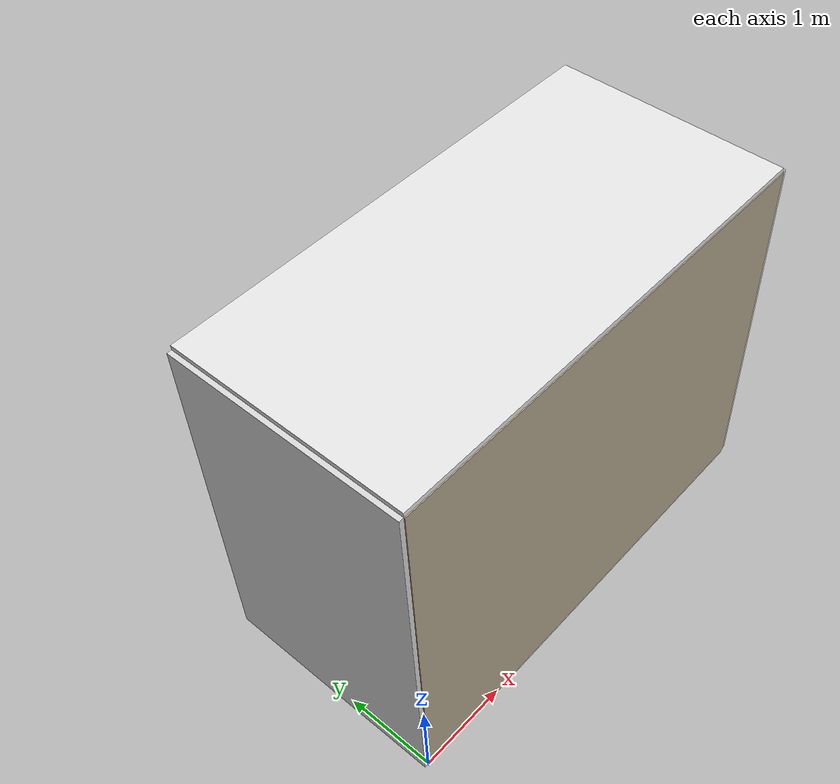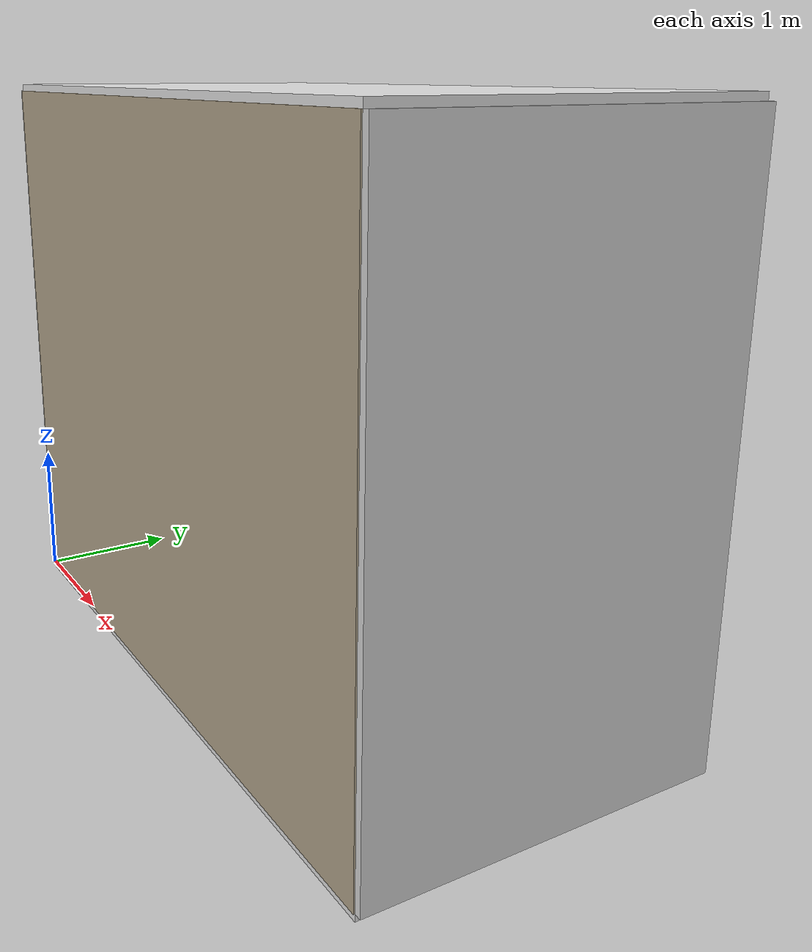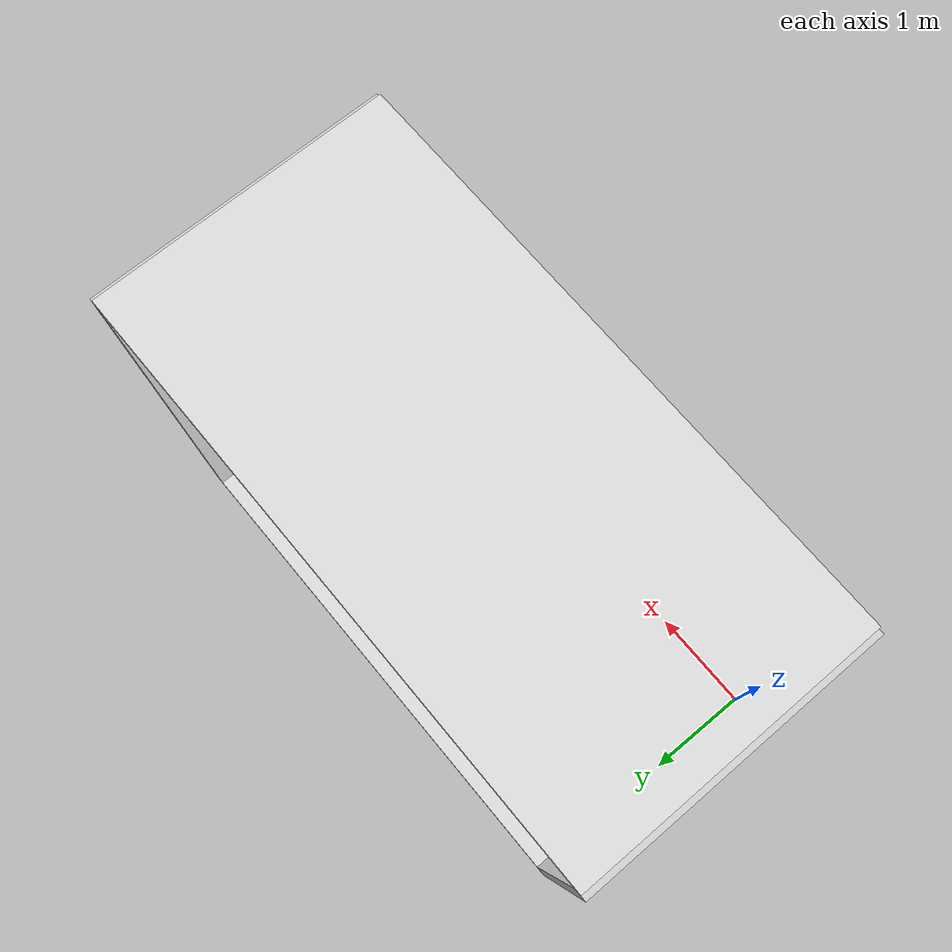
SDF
<?xml version="1.0" ?>
<sdf version="1.6">
  <world name="hackathon_room">

    <plugin name="gazebo_ros_state" filename="libgazebo_ros_state.so">
      <ros><namespace>/phantom_echo</namespace></ros>
    </plugin>

    <light name="overhead_light" type="directional">
      <pose>2.5 2.0 2.4 0 0 0</pose>
      <diffuse>1 1 1 1</diffuse>
      <specular>0.2 0.2 0.2 1</specular>
      <direction>0 0 -1</direction>
      <cast_shadows>true</cast_shadows>
    </light>

    <!-- Floor -->
    <model name="floor">
      <static>true</static>
      <pose>2.5 0 2.0 0 0 0</pose>
      <link name="link">
        <collision name="col"><geometry><box><size>5 0.02 4</size></box></geometry></collision>
        <visual name="vis">
          <geometry><box><size>5 0.02 4</size></box></geometry>
          <material><ambient>0.7 0.65 0.55 1</ambient></material>
        </visual>
      </link>
    </model>

    <!-- Walls -->
    <model name="wall_front">
      <static>true</static>
      <pose>2.5 1.25 0 0 0 0</pose>
      <link name="link">
        <collision name="col"><geometry><box><size>5 2.5 0.1</size></box></geometry></collision>
        <visual name="vis">
          <geometry><box><size>5 2.5 0.1</size></box></geometry>
          <material><ambient>0.9 0.9 0.9 1</ambient></material>
        </visual>
      </link>
    </model>

    <model name="wall_back">
      <static>true</static>
      <pose>2.5 1.25 4.0 0 0 0</pose>
      <link name="link">
        <collision name="col"><geometry><box><size>5 2.5 0.1</size></box></geometry></collision>
        <visual name="vis">
          <geometry><box><size>5 2.5 0.1</size></box></geometry>
          <material><ambient>0.9 0.9 0.9 1</ambient></material>
        </visual>
      </link>
    </model>

    <model name="wall_left">
      <static>true</static>
      <pose>0 1.25 2.0 0 0 0</pose>
      <link name="link">
        <collision name="col"><geometry><box><size>0.1 2.5 4</size></box></geometry></collision>
        <visual name="vis">
          <geometry><box><size>0.1 2.5 4</size></box></geometry>
          <material><ambient>0.85 0.85 0.85 1</ambient></material>
        </visual>
      </link>
    </model>

    <model name="wall_right">
      <static>true</static>
      <pose>5.0 1.25 2.0 0 0 0</pose>
      <link name="link">
        <collision name="col"><geometry><box><size>0.1 2.5 4</size></box></geometry></collision>
        <visual name="vis">
          <geometry><box><size>0.1 2.5 4</size></box></geometry>
          <material><ambient>0.85 0.85 0.85 1</ambient></material>
        </visual>
      </link>
    </model>

    <!-- Table with occluded box (hero demo object) -->
    <model name="table">
      <static>true</static>
      <pose>2.5 0.375 2.0 0 0 0</pose>
      <link name="link">
        <collision name="col"><geometry><box><size>1.2 0.75 0.6</size></box></geometry></collision>
        <visual name="vis">
          <geometry><box><size>1.2 0.75 0.6</size></box></geometry>
          <material><ambient>0.5 0.35 0.2 1</ambient></material>
        </visual>
      </link>
    </model>

    <model name="cardboard_box">
      <static>true</static>
      <pose>2.5 0.825 2.0 0 0 0</pose>
      <link name="link">
        <collision name="col"><geometry><box><size>0.35 0.3 0.35</size></box></geometry></collision>
        <visual name="vis">
          <geometry><box><size>0.35 0.3 0.35</size></box></geometry>
          <material><ambient>0.65 0.55 0.3 1</ambient></material>
        </visual>
      </link>
    </model>

    <!-- Sofa occluding back wall -->
    <model name="sofa">
      <static>true</static>
      <pose>1.5 0.425 3.2 0 0 0</pose>
      <link name="link">
        <collision name="col"><geometry><box><size>2.0 0.85 0.8</size></box></geometry></collision>
        <visual name="vis">
          <geometry><box><size>2.0 0.85 0.8</size></box></geometry>
          <material><ambient>0.3 0.25 0.4 1</ambient></material>
        </visual>
      </link>
    </model>

  </world>
</sdf>
